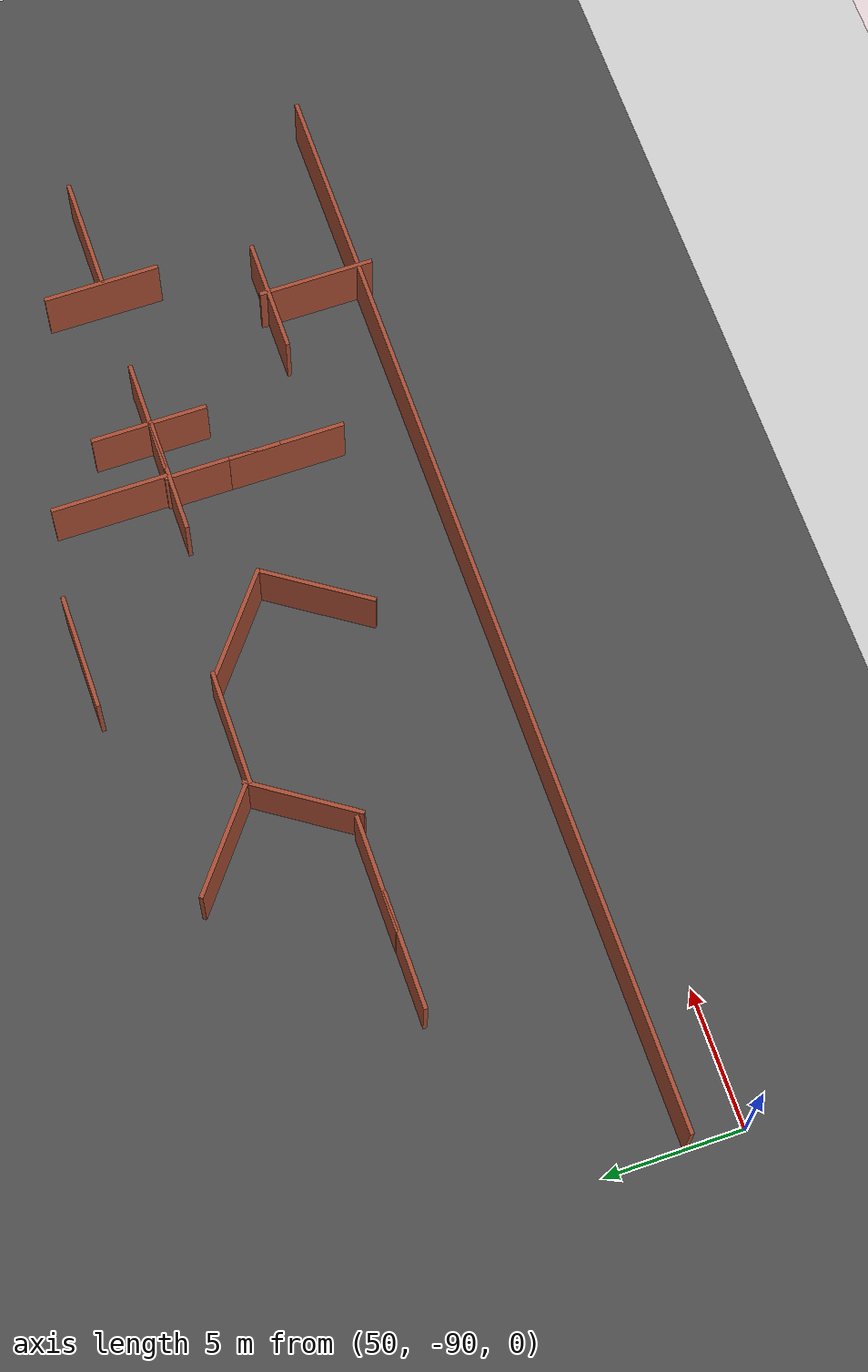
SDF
<sdf version="1.6">
 <world name="default">
  <model name="ground_plane">
   <static>1</static>
   <link name="link">
    <collision name="collision">
     <geometry><plane><normal>0 0 1</normal><size>200 200</size></plane></geometry>
     <surface><friction><ode><mu>100</mu><mu2>50</mu2></ode></friction></surface>
    </collision>
    <visual name="visual">
     <cast_shadows>0</cast_shadows>
     <geometry><plane><normal>0 0 1</normal><size>200 200</size></plane></geometry>
     <material>
      <script><uri>file://media/materials/scripts/gazebo.material</uri><name>Gazebo/Grey</name></script>
     </material>
    </visual>
   </link>
  </model>
  <model name="asphalt_plane">
   <static>1</static>
   <link name="link">
    <collision name="collision"><geometry><box><size>200 200 0.1</size></box></geometry></collision>
    <visual name="visual">
     <cast_shadows>0</cast_shadows>
     <geometry><box><size>200 200 0.1</size></box></geometry>
     <material>
      <script>
       <uri>model://asphalt_plane/materials/scripts</uri>
       <uri>model://asphalt_plane/materials/textures</uri>
       <name>vrc/asphalt</name>
      </script>
     </material>
    </visual>
   </link>
  </model>
  <model name="worlds_1_clone_0_clone_clone_0_clone_clone_clone_0">
   <pose>67.9553 -78.1375 0 0 0 -1.57092</pose>
   <link name="Wall_0">
    <collision name="Wall_0_Collision">
     <geometry><box><size>4.25 0.15 2.5</size></box></geometry>
     <pose>0 0 1.25 0 -0 0</pose>
    </collision>
    <visual name="Wall_0_Visual">
     <pose>0 0 1.25 0 -0 0</pose>
     <geometry><box><size>4.25 0.15 2.5</size></box></geometry>
     <material>
      <script><uri>file://media/materials/scripts/gazebo.material</uri><name>Gazebo/Bricks</name></script>
      <ambient>1 1 1 1</ambient>
     </material>
    </visual>
    <pose>0 -0 0 0 -0 1.5708</pose>
   </link>
   <static>1</static>
  </model>
  <model name="worlds_1_clone_0_clone_clone_0_clone_clone_0_clone_clone_clone_clone_0">
   <pose>58.7296 -81.1514 0 0 0 -1.57092</pose>
   <link name="Wall_0">
    <collision name="Wall_0_Collision">
     <geometry><box><size>4.25 0.15 2.5</size></box></geometry>
     <pose>0 0 1.25 0 -0 0</pose>
    </collision>
    <visual name="Wall_0_Visual">
     <pose>0 0 1.25 0 -0 0</pose>
     <geometry><box><size>4.25 0.15 2.5</size></box></geometry>
     <material>
      <script><uri>file://media/materials/scripts/gazebo.material</uri><name>Gazebo/Bricks</name></script>
      <ambient>1 1 1 1</ambient>
     </material>
    </visual>
    <pose>0 -0 0 0 -0 1.5708</pose>
   </link>
   <static>1</static>
  </model>
  <model name="worlds_1_clone_0_clone_clone_0_clone_clone_0_clone_clone_clone_clone_1">
   <pose>61.493 -81.135 0 0 0 -1.57092</pose>
   <link name="Wall_0">
    <collision name="Wall_0_Collision">
     <geometry><box><size>4.25 0.15 2.5</size></box></geometry>
     <pose>0 0 1.25 0 -0 0</pose>
    </collision>
    <visual name="Wall_0_Visual">
     <pose>0 0 1.25 0 -0 0</pose>
     <geometry><box><size>4.25 0.15 2.5</size></box></geometry>
     <material>
      <script><uri>file://media/materials/scripts/gazebo.material</uri><name>Gazebo/Bricks</name></script>
      <ambient>1 1 1 1</ambient>
     </material>
    </visual>
    <pose>0 -0 0 0 -0 1.5708</pose>
   </link>
   <static>1</static>
  </model>
  <model name="worlds_1_clone_1_clone_7_clone_clone_clone_clone_0">
   <pose>64.8036 -79.6697 0 0 0 -0.589382</pose>
   <link name="Wall_0">
    <collision name="Wall_0_Collision">
     <geometry><box><size>4.25 0.15 2.5</size></box></geometry>
     <pose>0 0 1.25 0 -0 0</pose>
    </collision>
    <visual name="Wall_0_Visual">
     <pose>0 0 1.25 0 -0 0</pose>
     <geometry><box><size>4.25 0.15 2.5</size></box></geometry>
     <material>
      <script><uri>file://media/materials/scripts/gazebo.material</uri><name>Gazebo/Bricks</name></script>
      <ambient>1 1 1 1</ambient>
     </material>
    </visual>
    <pose>0 -0 0 0 -0 1.5708</pose>
   </link>
   <static>1</static>
  </model>
  <model name="worlds_1_clone_1_clone_7_clone_clone_0_clone_0_clone">
   <pose>64.2131 -76.6769 0 0 -0 0.90029</pose>
   <link name="Wall_0">
    <collision name="Wall_0_Collision">
     <geometry><box><size>4.25 0.15 2.5</size></box></geometry>
     <pose>0 0 1.25 0 -0 0</pose>
    </collision>
    <visual name="Wall_0_Visual">
     <pose>0 0 1.25 0 -0 0</pose>
     <geometry><box><size>4.25 0.15 2.5</size></box></geometry>
     <material>
      <script><uri>file://media/materials/scripts/gazebo.material</uri><name>Gazebo/Bricks</name></script>
      <ambient>1 1 1 1</ambient>
     </material>
    </visual>
    <pose>0 -0 0 0 -0 1.5708</pose>
   </link>
   <static>1</static>
  </model>
  <model name="worlds_1_clone_0_clone_clone_clone_0">
   <pose>83.2444 -84.4697 0 0 0 -1.57092</pose>
   <link name="Wall_0">
    <collision name="Wall_0_Collision">
     <geometry><box><size>4.25 0.15 2.5</size></box></geometry>
     <pose>0 0 1.25 0 -0 0</pose>
    </collision>
    <visual name="Wall_0_Visual">
     <pose>0 0 1.25 0 -0 0</pose>
     <geometry><box><size>4.25 0.15 2.5</size></box></geometry>
     <material>
      <script><uri>file://media/materials/scripts/gazebo.material</uri><name>Gazebo/Bricks</name></script>
      <ambient>1 1 1 1</ambient>
     </material>
    </visual>
    <pose>0 -0 0 0 -0 1.5708</pose>
   </link>
   <static>1</static>
  </model>
  <model name="worlds_1_clone_0_clone_clone_clone_1">
   <pose>77.5975 -78.9334 0 0 0 -1.57092</pose>
   <link name="Wall_0">
    <collision name="Wall_0_Collision">
     <geometry><box><size>4.25 0.15 2.5</size></box></geometry>
     <pose>0 0 1.25 0 -0 0</pose>
    </collision>
    <visual name="Wall_0_Visual">
     <pose>0 0 1.25 0 -0 0</pose>
     <geometry><box><size>4.25 0.15 2.5</size></box></geometry>
     <material>
      <script><uri>file://media/materials/scripts/gazebo.material</uri><name>Gazebo/Bricks</name></script>
      <ambient>1 1 1 1</ambient>
     </material>
    </visual>
    <pose>0 -0 0 0 -0 1.5708</pose>
   </link>
   <static>1</static>
  </model>
  <model name="worlds_1_clone_0_clone_clone_clone_2">
   <pose>87.7856 -78.9348 0 0 0 -1.57092</pose>
   <link name="Wall_0">
    <collision name="Wall_0_Collision">
     <geometry><box><size>4.25 0.15 2.5</size></box></geometry>
     <pose>0 0 1.25 0 -0 0</pose>
    </collision>
    <visual name="Wall_0_Visual">
     <pose>0 0 1.25 0 -0 0</pose>
     <geometry><box><size>4.25 0.15 2.5</size></box></geometry>
     <material>
      <script><uri>file://media/materials/scripts/gazebo.material</uri><name>Gazebo/Bricks</name></script>
      <ambient>1 1 1 1</ambient>
     </material>
    </visual>
    <pose>0 -0 0 0 -0 1.5708</pose>
   </link>
   <static>1</static>
  </model>
  <model name="worlds_1_clone_clone_clone_clone">
   <pose>85.6489 -78.894 0 0 -0 0</pose>
   <link name="Wall_0">
    <collision name="Wall_0_Collision">
     <geometry><box><size>4.25 0.15 2.5</size></box></geometry>
     <pose>0 0 1.25 0 -0 0</pose>
    </collision>
    <visual name="Wall_0_Visual">
     <pose>0 0 1.25 0 -0 0</pose>
     <geometry><box><size>4.25 0.15 2.5</size></box></geometry>
     <material>
      <script><uri>file://media/materials/scripts/gazebo.material</uri><name>Gazebo/Bricks</name></script>
      <ambient>1 1 1 1</ambient>
     </material>
    </visual>
    <pose>0 -0 0 0 -0 1.5708</pose>
   </link>
   <static>1</static>
  </model>
  <model name="worlds_1_clone_clone_clone_clone_0">
   <pose>79.734 -78.8659 0 0 -0 0</pose>
   <link name="Wall_0">
    <collision name="Wall_0_Collision">
     <geometry><box><size>4.25 0.15 2.5</size></box></geometry>
     <pose>0 0 1.25 0 -0 0</pose>
    </collision>
    <visual name="Wall_0_Visual">
     <pose>0 0 1.25 0 -0 0</pose>
     <geometry><box><size>4.25 0.15 2.5</size></box></geometry>
     <material>
      <script><uri>file://media/materials/scripts/gazebo.material</uri><name>Gazebo/Bricks</name></script>
      <ambient>1 1 1 1</ambient>
     </material>
    </visual>
    <pose>0 -0 0 0 -0 1.5708</pose>
   </link>
   <static>1</static>
  </model>
  <model name="worlds_1_clone_clone_clone_clone_1">
   <pose>83.381 -86.268 0 0 -0 0</pose>
   <link name="Wall_0">
    <collision name="Wall_0_Collision">
     <geometry><box><size>4.25 0.15 2.5</size></box></geometry>
     <pose>0 0 1.25 0 -0 0</pose>
    </collision>
    <visual name="Wall_0_Visual">
     <pose>0 0 1.25 0 -0 0</pose>
     <geometry><box><size>4.25 0.15 2.5</size></box></geometry>
     <material>
      <script><uri>file://media/materials/scripts/gazebo.material</uri><name>Gazebo/Bricks</name></script>
      <ambient>1 1 1 1</ambient>
     </material>
    </visual>
    <pose>0 -0 0 0 -0 1.5708</pose>
   </link>
   <static>1</static>
  </model>
  <model name="worlds_1_clone_clone_clone_clone_2">
   <pose>77.5229 -80.8692 0 0 -0 0</pose>
   <link name="Wall_0">
    <collision name="Wall_0_Collision">
     <geometry><box><size>4.25 0.15 2.5</size></box></geometry>
     <pose>0 0 1.25 0 -0 0</pose>
    </collision>
    <visual name="Wall_0_Visual">
     <pose>0 0 1.25 0 -0 0</pose>
     <geometry><box><size>4.25 0.15 2.5</size></box></geometry>
     <material>
      <script><uri>file://media/materials/scripts/gazebo.material</uri><name>Gazebo/Bricks</name></script>
      <ambient>1 1 1 1</ambient>
     </material>
    </visual>
    <pose>0 -0 0 0 -0 1.5708</pose>
   </link>
   <static>1</static>
  </model>
  <model name="worlds_1_clone_clone_clone_clone_3">
   <pose>77.5192 -83.2309 0 0 -0 0</pose>
   <link name="Wall_0">
    <collision name="Wall_0_Collision">
     <geometry><box><size>4.25 0.15 2.5</size></box></geometry>
     <pose>0 0 1.25 0 -0 0</pose>
    </collision>
    <visual name="Wall_0_Visual">
     <pose>0 0 1.25 0 -0 0</pose>
     <geometry><box><size>4.25 0.15 2.5</size></box></geometry>
     <material>
      <script><uri>file://media/materials/scripts/gazebo.material</uri><name>Gazebo/Bricks</name></script>
      <ambient>1 1 1 1</ambient>
     </material>
    </visual>
    <pose>0 -0 0 0 -0 1.5708</pose>
   </link>
   <static>1</static>
  </model>
  <model name="worlds_1_clone_clone_clone_clone_4">
   <pose>77.6096 -76.7617 0 0 -0 0</pose>
   <link name="Wall_0">
    <collision name="Wall_0_Collision">
     <geometry><box><size>4.25 0.15 2.5</size></box></geometry>
     <pose>0 0 1.25 0 -0 0</pose>
    </collision>
    <visual name="Wall_0_Visual">
     <pose>0 0 1.25 0 -0 0</pose>
     <geometry><box><size>4.25 0.15 2.5</size></box></geometry>
     <material>
      <script><uri>file://media/materials/scripts/gazebo.material</uri><name>Gazebo/Bricks</name></script>
      <ambient>1 1 1 1</ambient>
     </material>
    </visual>
    <pose>0 -0 0 0 -0 1.5708</pose>
   </link>
   <static>1</static>
  </model>
  <model name="worlds_1_clone_0_clone_clone_clone_clone_1">
   <pose>80.0078 -78.8997 0 0 0 -1.57092</pose>
   <link name="Wall_0">
    <collision name="Wall_0_Collision">
     <geometry><box><size>4.25 0.15 2.5</size></box></geometry>
     <pose>0 0 1.25 0 -0 0</pose>
    </collision>
    <visual name="Wall_0_Visual">
     <pose>0 0 1.25 0 -0 0</pose>
     <geometry><box><size>4.25 0.15 2.5</size></box></geometry>
     <material>
      <script><uri>file://media/materials/scripts/gazebo.material</uri><name>Gazebo/Bricks</name></script>
      <ambient>1 1 1 1</ambient>
     </material>
    </visual>
    <pose>0 -0 0 0 -0 1.5708</pose>
   </link>
   <static>1</static>
  </model>
  <model name="worlds_1_clone_0_clone_clone_clone_clone_3">
   <pose>72.2405 -74.1054 0 0 0 -1.57092</pose>
   <link name="Wall_0">
    <collision name="Wall_0_Collision">
     <geometry><box><size>4.25 0.15 2.5</size></box></geometry>
     <pose>0 0 1.25 0 -0 0</pose>
    </collision>
    <visual name="Wall_0_Visual">
     <pose>0 0 1.25 0 -0 0</pose>
     <geometry><box><size>4.25 0.15 2.5</size></box></geometry>
     <material>
      <script><uri>file://media/materials/scripts/gazebo.material</uri><name>Gazebo/Bricks</name></script>
      <ambient>1 1 1 1</ambient>
     </material>
    </visual>
    <pose>0 -0 0 0 -0 1.5708</pose>
   </link>
   <static>1</static>
  </model>
  <model name="worlds_1_clone_1_clone_7_clone_clone_0_clone_0_clone_clone">
   <pose>71.537 -79.4816 0 0 -0 0.90029</pose>
   <link name="Wall_0">
    <collision name="Wall_0_Collision">
     <geometry><box><size>4.25 0.15 2.5</size></box></geometry>
     <pose>0 0 1.25 0 -0 0</pose>
    </collision>
    <visual name="Wall_0_Visual">
     <pose>0 0 1.25 0 -0 0</pose>
     <geometry><box><size>4.25 0.15 2.5</size></box></geometry>
     <material>
      <script><uri>file://media/materials/scripts/gazebo.material</uri><name>Gazebo/Bricks</name></script>
      <ambient>1 1 1 1</ambient>
     </material>
    </visual>
    <pose>0 -0 0 0 -0 1.5708</pose>
   </link>
   <static>1</static>
  </model>
  <model name="worlds_1_clone_1_clone_7_clone_clone_clone_clone_0_clone">
   <pose>71.9701 -82.5172 0 0 0 -0.589382</pose>
   <link name="Wall_0">
    <collision name="Wall_0_Collision">
     <geometry><box><size>4.25 0.15 2.5</size></box></geometry>
     <pose>0 0 1.25 0 -0 0</pose>
    </collision>
    <visual name="Wall_0_Visual">
     <pose>0 0 1.25 0 -0 0</pose>
     <geometry><box><size>4.25 0.15 2.5</size></box></geometry>
     <material>
      <script><uri>file://media/materials/scripts/gazebo.material</uri><name>Gazebo/Bricks</name></script>
      <ambient>1 1 1 1</ambient>
     </material>
    </visual>
    <pose>0 -0 0 0 -0 1.5708</pose>
   </link>
   <static>1</static>
  </model>
  <model name="longwall_clone_clone_1_clone">
   <pose>70.225 -87.8698 0 0 -0 0</pose>
   <link name="Wall_0">
    <collision name="Wall_0_Collision">
     <geometry><box><size>40.5 0.15 2.5</size></box></geometry>
     <pose>0 0 1.25 0 -0 0</pose>
    </collision>
    <visual name="Wall_0_Visual">
     <pose>0 0 1.25 0 -0 0</pose>
     <geometry><box><size>40.5 0.15 2.5</size></box></geometry>
     <material>
      <script><uri>file://media/materials/scripts/gazebo.material</uri><name>Gazebo/Bricks</name></script>
      <ambient>1 1 1 1</ambient>
     </material>
    </visual>
    <pose>1e-06 0 0 0 -0 0</pose>
   </link>
   <static>1</static>
  </model>
 </world>
</sdf>
